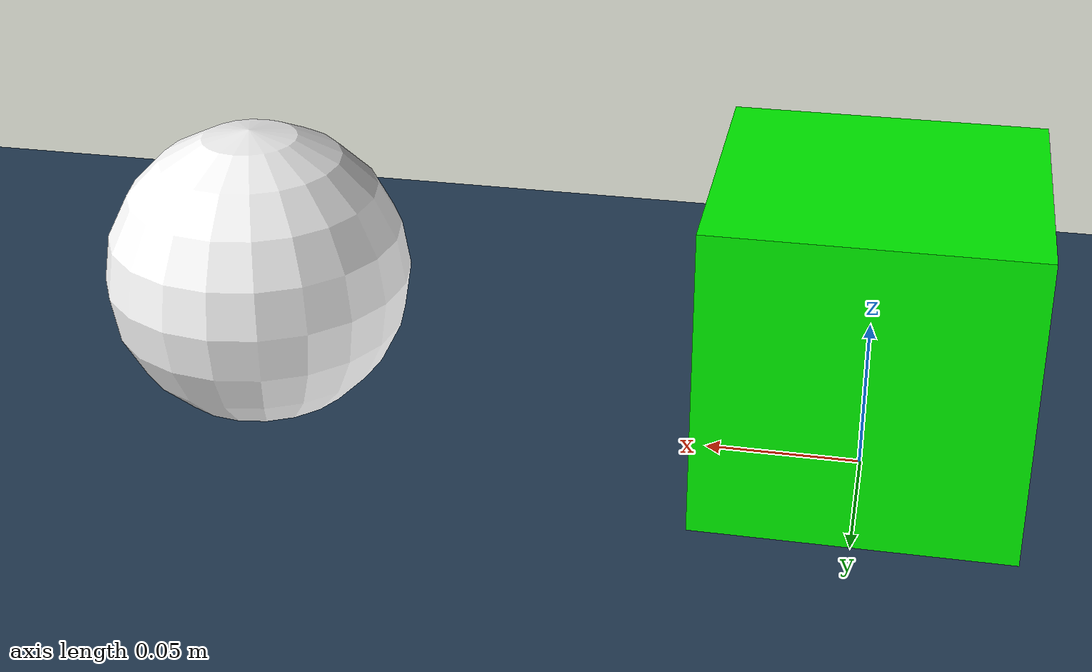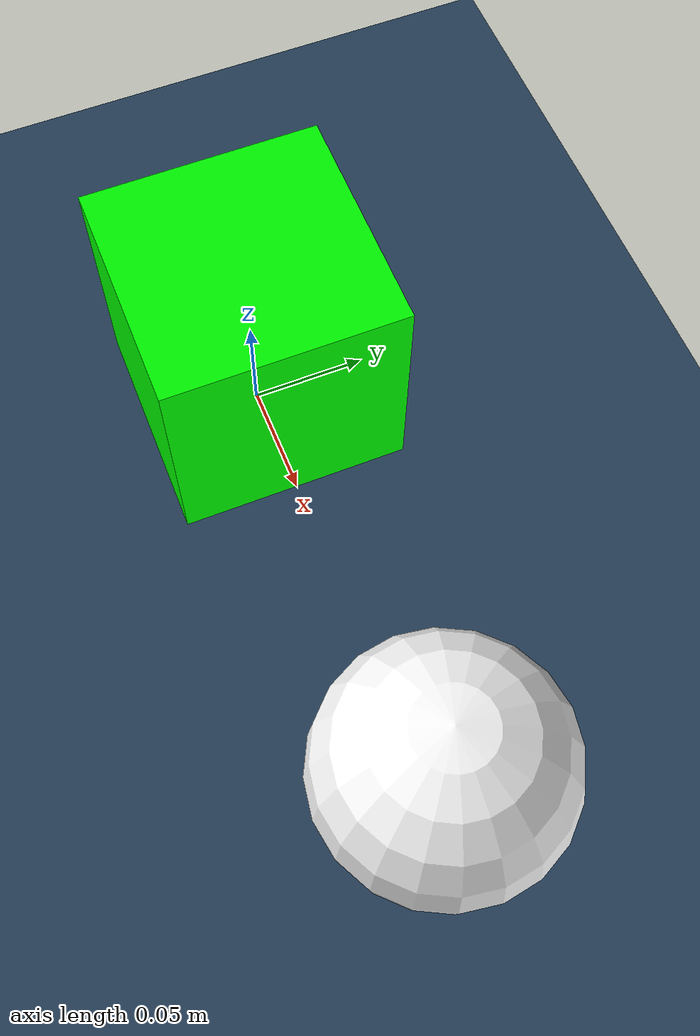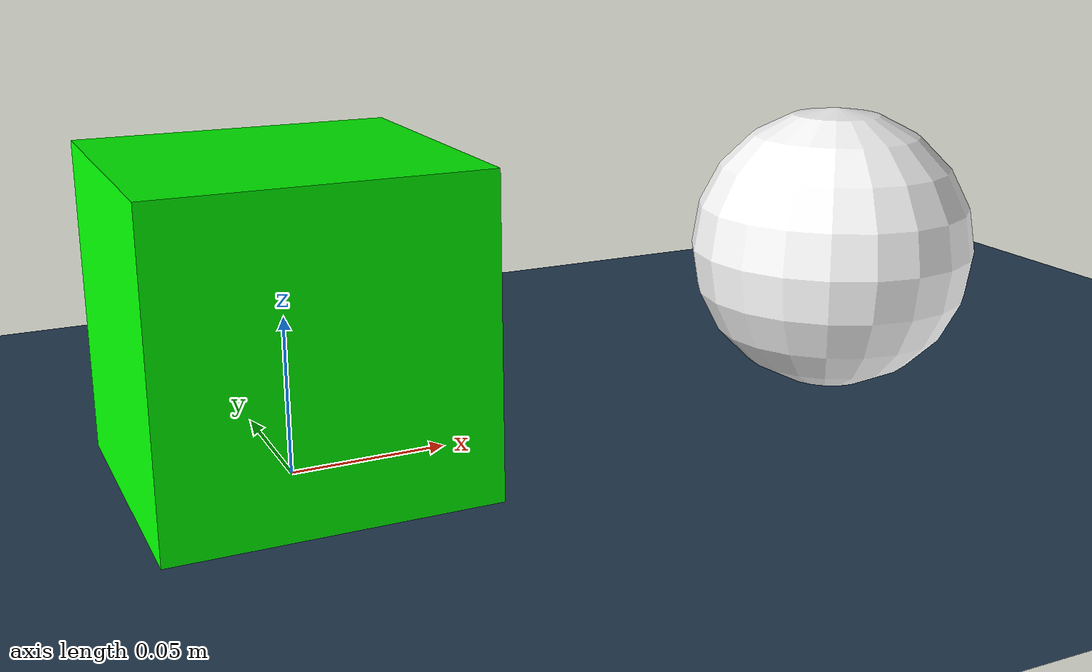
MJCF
<?xml version="1.0" ?>
<mujoco model="basic_simulation">
    <compiler angle="degree" coordinate="local"/>
    <option timestep="0.001"/>

    <!-- Worldbody -->
    <worldbody>
        <!-- Ground plane -->
        <geom name="floor" size="0 0 0.05" type="plane" material="groundplane"/>

        <!-- Green cube -->
        <body name="cube" pos="0 0 0.05">
            <geom name="green_cube" type="box" size="0.05 0.05 0.05" rgba="0 1 0 1" contype="1" conaffinity="1"/>
            <joint name="cube_free_joint" type="free" />
            <inertial pos="0 0 0" mass="100.0" diaginertia="10 10 10"/> <!-- Make the cube very heavy -->
        </body>

        <!-- White sphere -->
        <body name="sphere" pos="0.2 0 0.05">
            <geom name="white_sphere" type="sphere" size="0.05" rgba="1 1 1 1" contype="1" conaffinity="1"/>
            <joint name="sphero_free_joint" type="free" />
            <inertial pos="0 0 0" mass="0.1" diaginertia="0.01 0.01 0.01"/> <!-- Make the sphere light -->
        </body>

        <!-- Floating spotlight -->
        <body name="spotlight_body" pos="0 0 0.5">
            <joint name="spotlight_free_joint" type="free" />
            <light name="spotlight" pos="0 0 0" dir="0 0 -1" diffuse="1 1 1" specular="0.5 0.5 0.5" cutoff="45" exponent="10" directional="false"/>
            <inertial pos="0 0 0" mass="0.01" diaginertia="0.001 0.001 0.001"/>
        </body>

        <!-- Camera -->
        <camera name="fixed" pos="0 0 1" zaxis="0 0 1"/>
    </worldbody>

    <!-- Assets -->
    <asset>
        <texture type="skybox" builtin="gradient" rgb1="0.3 0.5 0.7" rgb2="0 0 0" width="512" height="3072"/>
        <texture type="2d" name="groundplane" builtin="checker" mark="edge" rgb1="0.2 0.3 0.4" rgb2="0.1 0.2 0.3"
        markrgb="0.8 0.8 0.8" width="300" height="300"/>
        <material name="groundplane" texture="groundplane" texuniform="true" texrepeat="5 5" reflectance="0.2"/>
    </asset>

    <!-- Visual -->
    <visual>
        <map znear="0.1" zfar="50"/>
    </visual>
</mujoco>
